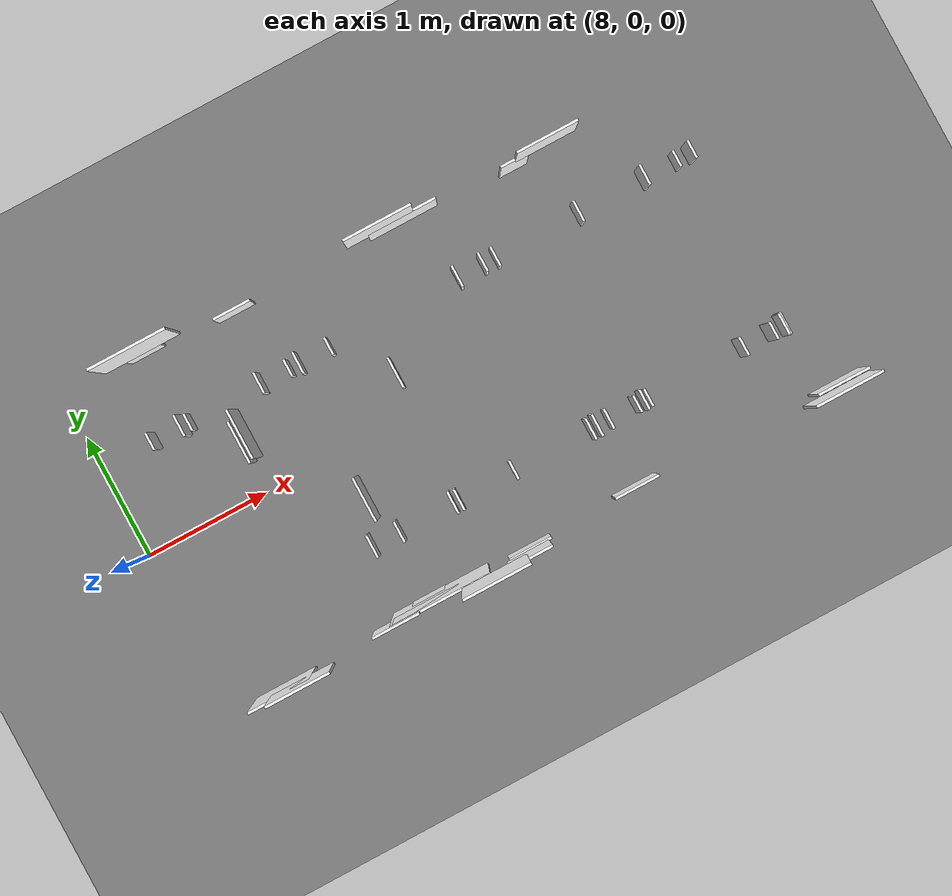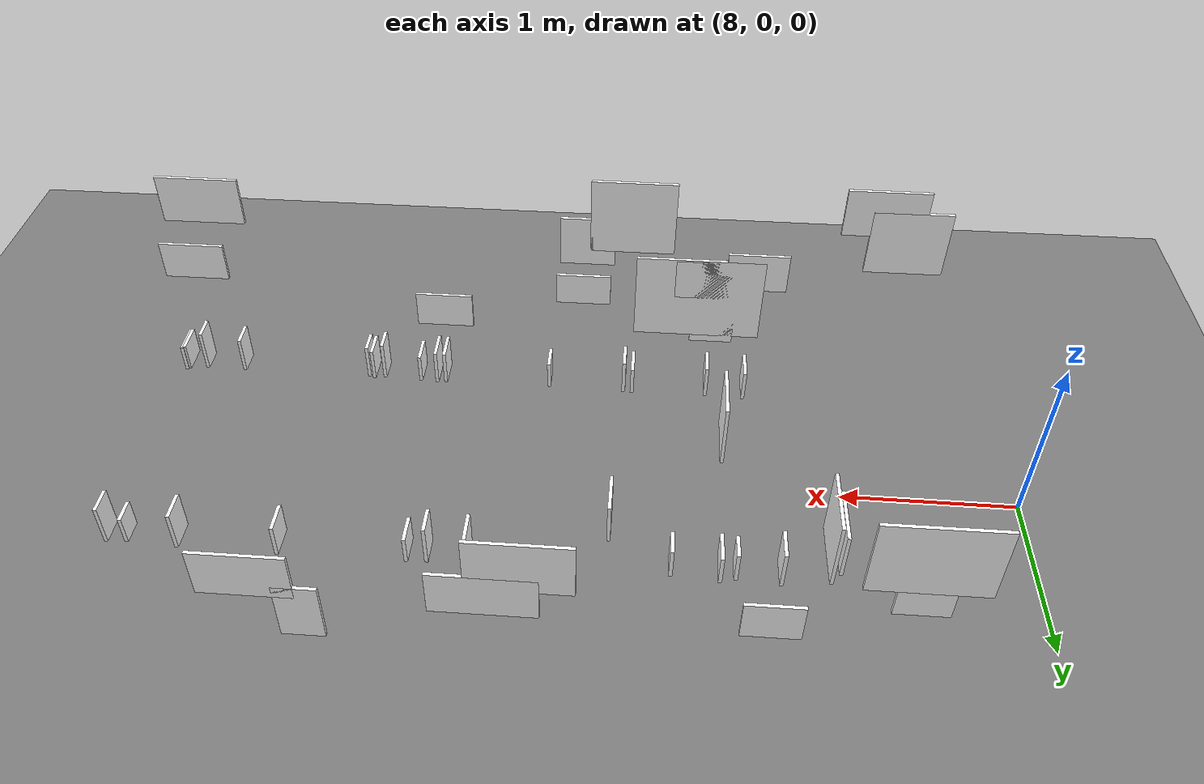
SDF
<sdf version="1.9">
 <world name="tunnel_world">
  <model name="ground_plane">
   <static>true</static>
   <link name="ground">
    <collision name="ground_collision">
     <geometry><plane><normal>0 0 1</normal><size>100 100</size></plane></geometry>
    </collision>
    <visual name="ground_visual">
     <geometry><plane><normal>0 0 1</normal><size>100 100</size></plane></geometry>
     <material>
      <diffuse>0.50 0.50 0.50 1</diffuse>
      <emissive>0.08 0.08 0.08 1</emissive>
      <ambient>0.5 0.5 0.5</ambient>
     </material>
    </visual>
   </link>
  </model>
  <model name="defect_crack_03">
   <static>true</static>
   <pose>8.618 -1.25 0.9 0 0 0</pose>
   <link name="link">
    <visual name="visual">
     <laser_retro>500</laser_retro>
     <geometry><box><size>0.466 0.02 0.42</size></box></geometry>
     <material>
      <ambient>1 1 1 1</ambient>
      <diffuse>1 1 1 1</diffuse>
      <emissive>0.05 0.05 0.05 1</emissive>
      <specular>0.05 0.05 0.05 1</specular>
      <pbr>
       <metal>
        <albedo_map>file:///home/ylf/workspace/inspection_robot/data_gen/textures_data1/crack_18.png</albedo_map>
        <metalness>0.0</metalness>
        <roughness>0.9</roughness>
       </metal>
      </pbr>
     </material>
    </visual>
    <collision name="collision"><geometry><box><size>0.466 0.02 0.42</size></box></geometry></collision>
   </link>
  </model>
  <model name="defect_crack_06">
   <static>true</static>
   <pose>12.906 -1.25 0.983 0 0 0</pose>
   <link name="link">
    <visual name="visual">
     <laser_retro>500</laser_retro>
     <geometry><box><size>0.507 0.02 0.305</size></box></geometry>
     <material>
      <ambient>1 1 1 1</ambient>
      <diffuse>1 1 1 1</diffuse>
      <emissive>0.05 0.05 0.05 1</emissive>
      <specular>0.05 0.05 0.05 1</specular>
      <pbr>
       <metal>
        <albedo_map>file:///home/ylf/workspace/inspection_robot/data_gen/textures_data1/crack_16.png</albedo_map>
        <metalness>0.0</metalness>
        <roughness>0.9</roughness>
       </metal>
      </pbr>
     </material>
    </visual>
    <collision name="collision"><geometry><box><size>0.507 0.02 0.305</size></box></geometry></collision>
   </link>
  </model>
  <model name="defect_crack_07">
   <static>true</static>
   <pose>9.477 -1.25 0.636 0 0 0</pose>
   <link name="link">
    <visual name="visual">
     <laser_retro>500</laser_retro>
     <geometry><box><size>0.372 0.02 0.258</size></box></geometry>
     <material>
      <ambient>1 1 1 1</ambient>
      <diffuse>1 1 1 1</diffuse>
      <emissive>0.05 0.05 0.05 1</emissive>
      <specular>0.05 0.05 0.05 1</specular>
      <pbr>
       <metal>
        <albedo_map>file:///home/ylf/workspace/inspection_robot/data_gen/textures_data1/crack_3.png</albedo_map>
        <metalness>0.0</metalness>
        <roughness>0.9</roughness>
       </metal>
      </pbr>
     </material>
    </visual>
    <collision name="collision"><geometry><box><size>0.372 0.02 0.258</size></box></geometry></collision>
   </link>
  </model>
  <model name="defect_crack_10">
   <static>true</static>
   <pose>10.862 1.25 0.487 0 0 0</pose>
   <link name="link">
    <visual name="visual">
     <laser_retro>500</laser_retro>
     <geometry><box><size>0.546 0.02 0.267</size></box></geometry>
     <material>
      <ambient>1 1 1 1</ambient>
      <diffuse>1 1 1 1</diffuse>
      <emissive>0.05 0.05 0.05 1</emissive>
      <specular>0.05 0.05 0.05 1</specular>
      <pbr>
       <metal>
        <albedo_map>file:///home/ylf/workspace/inspection_robot/data_gen/textures_data1/crack_14.png</albedo_map>
        <metalness>0.0</metalness>
        <roughness>0.9</roughness>
       </metal>
      </pbr>
     </material>
    </visual>
    <collision name="collision"><geometry><box><size>0.546 0.02 0.267</size></box></geometry></collision>
   </link>
  </model>
  <model name="defect_crack_14">
   <static>true</static>
   <pose>9.712 -1.25 0.565 0 0 0</pose>
   <link name="link">
    <visual name="visual">
     <laser_retro>500</laser_retro>
     <geometry><box><size>0.527 0.02 0.27</size></box></geometry>
     <material>
      <ambient>1 1 1 1</ambient>
      <diffuse>1 1 1 1</diffuse>
      <emissive>0.05 0.05 0.05 1</emissive>
      <specular>0.05 0.05 0.05 1</specular>
      <pbr>
       <metal>
        <albedo_map>file:///home/ylf/workspace/inspection_robot/data_gen/textures_data1/crack_4.png</albedo_map>
        <metalness>0.0</metalness>
        <roughness>0.9</roughness>
       </metal>
      </pbr>
     </material>
    </visual>
    <collision name="collision"><geometry><box><size>0.527 0.02 0.27</size></box></geometry></collision>
   </link>
  </model>
  <model name="defect_crack_19">
   <static>true</static>
   <pose>10.682 1.25 0.702 0 0 0</pose>
   <link name="link">
    <visual name="visual">
     <laser_retro>500</laser_retro>
     <geometry><box><size>0.532 0.02 0.327</size></box></geometry>
     <material>
      <ambient>1 1 1 1</ambient>
      <diffuse>1 1 1 1</diffuse>
      <emissive>0.05 0.05 0.05 1</emissive>
      <specular>0.05 0.05 0.05 1</specular>
      <pbr>
       <metal>
        <albedo_map>file:///home/ylf/workspace/inspection_robot/data_gen/textures_data1/crack_11.png</albedo_map>
        <metalness>0.0</metalness>
        <roughness>0.9</roughness>
       </metal>
      </pbr>
     </material>
    </visual>
    <collision name="collision"><geometry><box><size>0.532 0.02 0.327</size></box></geometry></collision>
   </link>
  </model>
  <model name="defect_crack_23">
   <static>true</static>
   <pose>10.524 -1.25 0.813 0 0 0</pose>
   <link name="link">
    <visual name="visual">
     <laser_retro>500</laser_retro>
     <geometry><box><size>0.334 0.02 0.322</size></box></geometry>
     <material>
      <ambient>1 1 1 1</ambient>
      <diffuse>1 1 1 1</diffuse>
      <emissive>0.05 0.05 0.05 1</emissive>
      <specular>0.05 0.05 0.05 1</specular>
      <pbr>
       <metal>
        <albedo_map>file:///home/ylf/workspace/inspection_robot/data_gen/textures_data1/crack_2.png</albedo_map>
        <metalness>0.0</metalness>
        <roughness>0.9</roughness>
       </metal>
      </pbr>
     </material>
    </visual>
    <collision name="collision"><geometry><box><size>0.334 0.02 0.322</size></box></geometry></collision>
   </link>
  </model>
  <model name="defect_equip_bracket_loose_03">
   <static>true</static>
   <pose>9.726 -1.25 0.21 0 0 0</pose>
   <link name="link">
    <visual name="visual">
     <laser_retro>760</laser_retro>
     <geometry><box><size>0.27 0.02 0.242</size></box></geometry>
     <material>
      <ambient>1 1 1 1</ambient>
      <diffuse>1 1 1 1</diffuse>
      <emissive>0.05 0.05 0.05 1</emissive>
      <specular>0.05 0.05 0.05 1</specular>
      <pbr>
       <metal>
        <albedo_map>file:///home/ylf/workspace/inspection_robot/data_gen/textures_data1/equip_bracket_loose_2.png</albedo_map>
        <metalness>0.0</metalness>
        <roughness>0.9</roughness>
       </metal>
      </pbr>
     </material>
    </visual>
    <collision name="collision"><geometry><box><size>0.27 0.02 0.242</size></box></geometry></collision>
   </link>
  </model>
  <model name="defect_equip_bracket_loose_10">
   <static>true</static>
   <pose>8.826 1.25 0.747 0 0 0</pose>
   <link name="link">
    <visual name="visual">
     <laser_retro>760</laser_retro>
     <geometry><box><size>0.27 0.02 0.377</size></box></geometry>
     <material>
      <ambient>1 1 1 1</ambient>
      <diffuse>1 1 1 1</diffuse>
      <emissive>0.05 0.05 0.05 1</emissive>
      <specular>0.05 0.05 0.05 1</specular>
      <pbr>
       <metal>
        <albedo_map>file:///home/ylf/workspace/inspection_robot/data_gen/textures_data1/equip_bracket_loose_11.png</albedo_map>
        <metalness>0.0</metalness>
        <roughness>0.9</roughness>
       </metal>
      </pbr>
     </material>
    </visual>
    <collision name="collision"><geometry><box><size>0.27 0.02 0.377</size></box></geometry></collision>
   </link>
  </model>
  <model name="defect_equip_bracket_loose_14">
   <static>true</static>
   <pose>10.548 -1.25 0.45 0 0 0</pose>
   <link name="link">
    <visual name="visual">
     <laser_retro>760</laser_retro>
     <geometry><box><size>0.339 0.02 0.209</size></box></geometry>
     <material>
      <ambient>1 1 1 1</ambient>
      <diffuse>1 1 1 1</diffuse>
      <emissive>0.05 0.05 0.05 1</emissive>
      <specular>0.05 0.05 0.05 1</specular>
      <pbr>
       <metal>
        <albedo_map>file:///home/ylf/workspace/inspection_robot/data_gen/textures_data1/equip_bracket_loose_24.png</albedo_map>
        <metalness>0.0</metalness>
        <roughness>0.9</roughness>
       </metal>
      </pbr>
     </material>
    </visual>
    <collision name="collision"><geometry><box><size>0.339 0.02 0.209</size></box></geometry></collision>
   </link>
  </model>
  <model name="defect_equip_bracket_loose_16">
   <static>true</static>
   <pose>11.775 1.25 0.274 0 0 0</pose>
   <link name="link">
    <visual name="visual">
     <laser_retro>760</laser_retro>
     <geometry><box><size>0.229 0.02 0.358</size></box></geometry>
     <material>
      <ambient>1 1 1 1</ambient>
      <diffuse>1 1 1 1</diffuse>
      <emissive>0.05 0.05 0.05 1</emissive>
      <specular>0.05 0.05 0.05 1</specular>
      <pbr>
       <metal>
        <albedo_map>file:///home/ylf/workspace/inspection_robot/data_gen/textures_data1/equip_bracket_loose_20.png</albedo_map>
        <metalness>0.0</metalness>
        <roughness>0.9</roughness>
       </metal>
      </pbr>
     </material>
    </visual>
    <collision name="collision"><geometry><box><size>0.229 0.02 0.358</size></box></geometry></collision>
   </link>
  </model>
  <model name="defect_equip_bracket_loose_20">
   <static>true</static>
   <pose>11.444 -1.25 0.233 0 0 0</pose>
   <link name="link">
    <visual name="visual">
     <laser_retro>760</laser_retro>
     <geometry><box><size>0.362 0.02 0.236</size></box></geometry>
     <material>
      <ambient>1 1 1 1</ambient>
      <diffuse>1 1 1 1</diffuse>
      <emissive>0.05 0.05 0.05 1</emissive>
      <specular>0.05 0.05 0.05 1</specular>
      <pbr>
       <metal>
        <albedo_map>file:///home/ylf/workspace/inspection_robot/data_gen/textures_data1/equip_bracket_loose_21.png</albedo_map>
        <metalness>0.0</metalness>
        <roughness>0.9</roughness>
       </metal>
      </pbr>
     </material>
    </visual>
    <collision name="collision"><geometry><box><size>0.362 0.02 0.236</size></box></geometry></collision>
   </link>
  </model>
  <model name="defect_equip_bracket_loose_22">
   <static>true</static>
   <pose>9.486 1.25 0.434 0 0 0</pose>
   <link name="link">
    <visual name="visual">
     <laser_retro>760</laser_retro>
     <geometry><box><size>0.296 0.02 0.227</size></box></geometry>
     <material>
      <ambient>1 1 1 1</ambient>
      <diffuse>1 1 1 1</diffuse>
      <emissive>0.05 0.05 0.05 1</emissive>
      <specular>0.05 0.05 0.05 1</specular>
      <pbr>
       <metal>
        <albedo_map>file:///home/ylf/workspace/inspection_robot/data_gen/textures_data1/equip_bracket_loose_13.png</albedo_map>
        <metalness>0.0</metalness>
        <roughness>0.9</roughness>
       </metal>
      </pbr>
     </material>
    </visual>
    <collision name="collision"><geometry><box><size>0.296 0.02 0.227</size></box></geometry></collision>
   </link>
  </model>
  <model name="defect_equip_intrusion_01">
   <static>true</static>
   <pose>10.292 0.32 0.138 0 0 0</pose>
   <link name="link">
    <visual name="visual">
     <laser_retro>900</laser_retro>
     <geometry><box><size>0.02 0.251 0.256</size></box></geometry>
     <material>
      <ambient>1 1 1 1</ambient>
      <diffuse>1 1 1 1</diffuse>
      <emissive>0.05 0.05 0.05 1</emissive>
      <specular>0.05 0.05 0.05 1</specular>
      <pbr>
       <metal>
        <albedo_map>file:///home/ylf/workspace/inspection_robot/data_gen/textures_data1/equip_intrusion_9.png</albedo_map>
        <metalness>0.0</metalness>
        <roughness>0.9</roughness>
       </metal>
      </pbr>
     </material>
    </visual>
   </link>
  </model>
  <model name="defect_equip_intrusion_02">
   <static>true</static>
   <pose>9.042 0.412 0.154 0 0 0</pose>
   <link name="link">
    <visual name="visual">
     <laser_retro>900</laser_retro>
     <geometry><box><size>0.02 0.346 0.288</size></box></geometry>
     <material>
      <ambient>1 1 1 1</ambient>
      <diffuse>1 1 1 1</diffuse>
      <emissive>0.05 0.05 0.05 1</emissive>
      <specular>0.05 0.05 0.05 1</specular>
      <pbr>
       <metal>
        <albedo_map>file:///home/ylf/workspace/inspection_robot/data_gen/textures_data1/equip_intrusion_5.png</albedo_map>
        <metalness>0.0</metalness>
        <roughness>0.9</roughness>
       </metal>
      </pbr>
     </material>
    </visual>
   </link>
  </model>
  <model name="defect_equip_intrusion_06">
   <static>true</static>
   <pose>9.662 -0.389 0.213 0 0 0</pose>
   <link name="link">
    <visual name="visual">
     <laser_retro>900</laser_retro>
     <geometry><box><size>0.02 0.357 0.406</size></box></geometry>
     <material>
      <ambient>1 1 1 1</ambient>
      <diffuse>1 1 1 1</diffuse>
      <emissive>0.05 0.05 0.05 1</emissive>
      <specular>0.05 0.05 0.05 1</specular>
      <pbr>
       <metal>
        <albedo_map>file:///home/ylf/workspace/inspection_robot/data_gen/textures_data1/equip_intrusion_6.png</albedo_map>
        <metalness>0.0</metalness>
        <roughness>0.9</roughness>
       </metal>
      </pbr>
     </material>
    </visual>
   </link>
  </model>
  <model name="defect_equip_intrusion_09">
   <static>true</static>
   <pose>9.099 0.453 0.227 0 0 0</pose>
   <link name="link">
    <visual name="visual">
     <laser_retro>900</laser_retro>
     <geometry><box><size>0.02 0.401 0.433</size></box></geometry>
     <material>
      <ambient>1 1 1 1</ambient>
      <diffuse>1 1 1 1</diffuse>
      <emissive>0.05 0.05 0.05 1</emissive>
      <specular>0.05 0.05 0.05 1</specular>
      <pbr>
       <metal>
        <albedo_map>file:///home/ylf/workspace/inspection_robot/data_gen/textures_data1/equip_intrusion_4.png</albedo_map>
        <metalness>0.0</metalness>
        <roughness>0.9</roughness>
       </metal>
      </pbr>
     </material>
    </visual>
   </link>
  </model>
  <model name="defect_leakage_06">
   <static>true</static>
   <pose>10.253 -1.25 0.995 0 0 0</pose>
   <link name="link">
    <visual name="visual">
     <laser_retro>300</laser_retro>
     <geometry><box><size>0.511 0.02 0.483</size></box></geometry>
     <material>
      <ambient>1 1 1 1</ambient>
      <diffuse>1 1 1 1</diffuse>
      <emissive>0.05 0.05 0.05 1</emissive>
      <specular>0.05 0.05 0.05 1</specular>
      <pbr>
       <metal>
        <albedo_map>file:///home/ylf/workspace/inspection_robot/data_gen/textures_data1/leakage_15.png</albedo_map>
        <metalness>0.0</metalness>
        <roughness>0.9</roughness>
       </metal>
      </pbr>
     </material>
    </visual>
    <collision name="collision"><geometry><box><size>0.511 0.02 0.483</size></box></geometry></collision>
   </link>
  </model>
  <model name="defect_leakage_09">
   <static>true</static>
   <pose>9.824 -1.25 0.423 0 0 0</pose>
   <link name="link">
    <visual name="visual">
     <laser_retro>300</laser_retro>
     <geometry><box><size>0.793 0.02 0.573</size></box></geometry>
     <material>
      <ambient>1 1 1 1</ambient>
      <diffuse>1 1 1 1</diffuse>
      <emissive>0.05 0.05 0.05 1</emissive>
      <specular>0.05 0.05 0.05 1</specular>
      <pbr>
       <metal>
        <albedo_map>file:///home/ylf/workspace/inspection_robot/data_gen/textures_data1/leakage_6.png</albedo_map>
        <metalness>0.0</metalness>
        <roughness>0.9</roughness>
       </metal>
      </pbr>
     </material>
    </visual>
    <collision name="collision"><geometry><box><size>0.793 0.02 0.573</size></box></geometry></collision>
   </link>
  </model>
  <model name="defect_leakage_18">
   <static>true</static>
   <pose>8.825 1.25 0.93 0 0 0</pose>
   <link name="link">
    <visual name="visual">
     <laser_retro>300</laser_retro>
     <geometry><box><size>0.585 0.02 0.43</size></box></geometry>
     <material>
      <ambient>1 1 1 1</ambient>
      <diffuse>1 1 1 1</diffuse>
      <emissive>0.05 0.05 0.05 1</emissive>
      <specular>0.05 0.05 0.05 1</specular>
      <pbr>
       <metal>
        <albedo_map>file:///home/ylf/workspace/inspection_robot/data_gen/textures_data1/leakage_7.png</albedo_map>
        <metalness>0.0</metalness>
        <roughness>0.9</roughness>
       </metal>
      </pbr>
     </material>
    </visual>
    <collision name="collision"><geometry><box><size>0.585 0.02 0.43</size></box></geometry></collision>
   </link>
  </model>
  <model name="defect_leakage_24">
   <static>true</static>
   <pose>12.025 1.25 0.525 0 0 0</pose>
   <link name="link">
    <visual name="visual">
     <laser_retro>300</laser_retro>
     <geometry><box><size>0.49 0.02 0.286</size></box></geometry>
     <material>
      <ambient>1 1 1 1</ambient>
      <diffuse>1 1 1 1</diffuse>
      <emissive>0.05 0.05 0.05 1</emissive>
      <specular>0.05 0.05 0.05 1</specular>
      <pbr>
       <metal>
        <albedo_map>file:///home/ylf/workspace/inspection_robot/data_gen/textures_data1/leakage_16.png</albedo_map>
        <metalness>0.0</metalness>
        <roughness>0.9</roughness>
       </metal>
      </pbr>
     </material>
    </visual>
    <collision name="collision"><geometry><box><size>0.49 0.02 0.286</size></box></geometry></collision>
   </link>
  </model>
  <model name="defect_rail_fastener_broken_01">
   <static>true</static>
   <pose>8.498 0.717 0.276 0 0 0</pose>
   <link name="link">
    <visual name="visual">
     <laser_retro>450</laser_retro>
     <geometry><box><size>0.02 0.137 0.241</size></box></geometry>
     <material>
      <ambient>1 1 1 1</ambient>
      <diffuse>1 1 1 1</diffuse>
      <emissive>0.05 0.05 0.05 1</emissive>
      <specular>0.05 0.05 0.05 1</specular>
      <pbr>
       <metal>
        <albedo_map>file:///home/ylf/workspace/inspection_robot/data_gen/textures_data1/rail_fastener_broken_2.png</albedo_map>
        <metalness>0.0</metalness>
        <roughness>0.9</roughness>
       </metal>
      </pbr>
     </material>
    </visual>
   </link>
  </model>
  <model name="defect_rail_fastener_broken_02">
   <static>true</static>
   <pose>11.346 -0.717 0.263 0 0 0</pose>
   <link name="link">
    <visual name="visual">
     <laser_retro>450</laser_retro>
     <geometry><box><size>0.02 0.174 0.216</size></box></geometry>
     <material>
      <ambient>1 1 1 1</ambient>
      <diffuse>1 1 1 1</diffuse>
      <emissive>0.05 0.05 0.05 1</emissive>
      <specular>0.05 0.05 0.05 1</specular>
      <pbr>
       <metal>
        <albedo_map>file:///home/ylf/workspace/inspection_robot/data_gen/textures_data1/rail_fastener_broken_20.png</albedo_map>
        <metalness>0.0</metalness>
        <roughness>0.9</roughness>
       </metal>
      </pbr>
     </material>
    </visual>
   </link>
  </model>
  <model name="defect_rail_fastener_broken_04">
   <static>true</static>
   <pose>12.84 0.717 0.24 0 0 0</pose>
   <link name="link">
    <visual name="visual">
     <laser_retro>450</laser_retro>
     <geometry><box><size>0.02 0.133 0.169</size></box></geometry>
     <material>
      <ambient>1 1 1 1</ambient>
      <diffuse>1 1 1 1</diffuse>
      <emissive>0.05 0.05 0.05 1</emissive>
      <specular>0.05 0.05 0.05 1</specular>
      <pbr>
       <metal>
        <albedo_map>file:///home/ylf/workspace/inspection_robot/data_gen/textures_data1/rail_fastener_broken_25.png</albedo_map>
        <metalness>0.0</metalness>
        <roughness>0.9</roughness>
       </metal>
      </pbr>
     </material>
    </visual>
   </link>
  </model>
  <model name="defect_rail_fastener_broken_05">
   <static>true</static>
   <pose>11.229 0.717 0.276 0 0 0</pose>
   <link name="link">
    <visual name="visual">
     <laser_retro>450</laser_retro>
     <geometry><box><size>0.02 0.153 0.242</size></box></geometry>
     <material>
      <ambient>1 1 1 1</ambient>
      <diffuse>1 1 1 1</diffuse>
      <emissive>0.05 0.05 0.05 1</emissive>
      <specular>0.05 0.05 0.05 1</specular>
      <pbr>
       <metal>
        <albedo_map>file:///home/ylf/workspace/inspection_robot/data_gen/textures_data1/rail_fastener_broken_12.png</albedo_map>
        <metalness>0.0</metalness>
        <roughness>0.9</roughness>
       </metal>
      </pbr>
     </material>
    </visual>
   </link>
  </model>
  <model name="defect_rail_fastener_broken_10">
   <static>true</static>
   <pose>9.702 0.717 0.244 0 0 0</pose>
   <link name="link">
    <visual name="visual">
     <laser_retro>450</laser_retro>
     <geometry><box><size>0.02 0.182 0.178</size></box></geometry>
     <material>
      <ambient>1 1 1 1</ambient>
      <diffuse>1 1 1 1</diffuse>
      <emissive>0.05 0.05 0.05 1</emissive>
      <specular>0.05 0.05 0.05 1</specular>
      <pbr>
       <metal>
        <albedo_map>file:///home/ylf/workspace/inspection_robot/data_gen/textures_data1/rail_fastener_broken_15.png</albedo_map>
        <metalness>0.0</metalness>
        <roughness>0.9</roughness>
       </metal>
      </pbr>
     </material>
    </visual>
   </link>
  </model>
  <model name="defect_rail_fastener_broken_17">
   <static>true</static>
   <pose>10.211 -0.717 0.242 0 0 0</pose>
   <link name="link">
    <visual name="visual">
     <laser_retro>450</laser_retro>
     <geometry><box><size>0.02 0.181 0.174</size></box></geometry>
     <material>
      <ambient>1 1 1 1</ambient>
      <diffuse>1 1 1 1</diffuse>
      <emissive>0.05 0.05 0.05 1</emissive>
      <specular>0.05 0.05 0.05 1</specular>
      <pbr>
       <metal>
        <albedo_map>file:///home/ylf/workspace/inspection_robot/data_gen/textures_data1/rail_fastener_broken_22.png</albedo_map>
        <metalness>0.0</metalness>
        <roughness>0.9</roughness>
       </metal>
      </pbr>
     </material>
    </visual>
   </link>
  </model>
  <model name="defect_rail_fastener_broken_19">
   <static>true</static>
   <pose>11.399 -0.717 0.265 0 0 0</pose>
   <link name="link">
    <visual name="visual">
     <laser_retro>450</laser_retro>
     <geometry><box><size>0.02 0.181 0.22</size></box></geometry>
     <material>
      <ambient>1 1 1 1</ambient>
      <diffuse>1 1 1 1</diffuse>
      <emissive>0.05 0.05 0.05 1</emissive>
      <specular>0.05 0.05 0.05 1</specular>
      <pbr>
       <metal>
        <albedo_map>file:///home/ylf/workspace/inspection_robot/data_gen/textures_data1/rail_fastener_broken_21.png</albedo_map>
        <metalness>0.0</metalness>
        <roughness>0.9</roughness>
       </metal>
      </pbr>
     </material>
    </visual>
   </link>
  </model>
  <model name="defect_rail_fastener_broken_22">
   <static>true</static>
   <pose>12.839 -0.717 0.285 0 0 0</pose>
   <link name="link">
    <visual name="visual">
     <laser_retro>450</laser_retro>
     <geometry><box><size>0.02 0.139 0.259</size></box></geometry>
     <material>
      <ambient>1 1 1 1</ambient>
      <diffuse>1 1 1 1</diffuse>
      <emissive>0.05 0.05 0.05 1</emissive>
      <specular>0.05 0.05 0.05 1</specular>
      <pbr>
       <metal>
        <albedo_map>file:///home/ylf/workspace/inspection_robot/data_gen/textures_data1/rail_fastener_broken_24.png</albedo_map>
        <metalness>0.0</metalness>
        <roughness>0.9</roughness>
       </metal>
      </pbr>
     </material>
    </visual>
   </link>
  </model>
  <model name="defect_rail_fastener_broken_23">
   <static>true</static>
   <pose>11.821 -0.717 0.264 0 0 0</pose>
   <link name="link">
    <visual name="visual">
     <laser_retro>450</laser_retro>
     <geometry><box><size>0.02 0.142 0.218</size></box></geometry>
     <material>
      <ambient>1 1 1 1</ambient>
      <diffuse>1 1 1 1</diffuse>
      <emissive>0.05 0.05 0.05 1</emissive>
      <specular>0.05 0.05 0.05 1</specular>
      <pbr>
       <metal>
        <albedo_map>file:///home/ylf/workspace/inspection_robot/data_gen/textures_data1/rail_fastener_broken_19.png</albedo_map>
        <metalness>0.0</metalness>
        <roughness>0.9</roughness>
       </metal>
      </pbr>
     </material>
    </visual>
   </link>
  </model>
  <model name="defect_rail_fastener_broken_24">
   <static>true</static>
   <pose>8.738 0.717 0.278 0 0 0</pose>
   <link name="link">
    <visual name="visual">
     <laser_retro>450</laser_retro>
     <geometry><box><size>0.02 0.173 0.246</size></box></geometry>
     <material>
      <ambient>1 1 1 1</ambient>
      <diffuse>1 1 1 1</diffuse>
      <emissive>0.05 0.05 0.05 1</emissive>
      <specular>0.05 0.05 0.05 1</specular>
      <pbr>
       <metal>
        <albedo_map>file:///home/ylf/workspace/inspection_robot/data_gen/textures_data1/rail_fastener_broken_3.png</albedo_map>
        <metalness>0.0</metalness>
        <roughness>0.9</roughness>
       </metal>
      </pbr>
     </material>
    </visual>
   </link>
  </model>
  <model name="defect_rail_fastener_broken_25">
   <static>true</static>
   <pose>12.964 -0.717 0.237 0 0 0</pose>
   <link name="link">
    <visual name="visual">
     <laser_retro>450</laser_retro>
     <geometry><box><size>0.02 0.183 0.165</size></box></geometry>
     <material>
      <ambient>1 1 1 1</ambient>
      <diffuse>1 1 1 1</diffuse>
      <emissive>0.05 0.05 0.05 1</emissive>
      <specular>0.05 0.05 0.05 1</specular>
      <pbr>
       <metal>
        <albedo_map>file:///home/ylf/workspace/inspection_robot/data_gen/textures_data1/rail_fastener_broken_6.png</albedo_map>
        <metalness>0.0</metalness>
        <roughness>0.9</roughness>
       </metal>
      </pbr>
     </material>
    </visual>
   </link>
  </model>
  <model name="defect_rail_fastener_loose_01">
   <static>true</static>
   <pose>12.95 0.717 0.276 0 0 0</pose>
   <link name="link">
    <visual name="visual">
     <laser_retro>380</laser_retro>
     <geometry><box><size>0.02 0.143 0.241</size></box></geometry>
     <material>
      <ambient>1 1 1 1</ambient>
      <diffuse>1 1 1 1</diffuse>
      <emissive>0.05 0.05 0.05 1</emissive>
      <specular>0.05 0.05 0.05 1</specular>
      <pbr>
       <metal>
        <albedo_map>file:///home/ylf/workspace/inspection_robot/data_gen/textures_data1/rail_fastener_loose_10.png</albedo_map>
        <metalness>0.0</metalness>
        <roughness>0.9</roughness>
       </metal>
      </pbr>
     </material>
    </visual>
   </link>
  </model>
  <model name="defect_rail_fastener_loose_05">
   <static>true</static>
   <pose>9.544 -0.717 0.251 0 0 0</pose>
   <link name="link">
    <visual name="visual">
     <laser_retro>380</laser_retro>
     <geometry><box><size>0.02 0.186 0.192</size></box></geometry>
     <material>
      <ambient>1 1 1 1</ambient>
      <diffuse>1 1 1 1</diffuse>
      <emissive>0.05 0.05 0.05 1</emissive>
      <specular>0.05 0.05 0.05 1</specular>
      <pbr>
       <metal>
        <albedo_map>file:///home/ylf/workspace/inspection_robot/data_gen/textures_data1/rail_fastener_loose_13.png</albedo_map>
        <metalness>0.0</metalness>
        <roughness>0.9</roughness>
       </metal>
      </pbr>
     </material>
    </visual>
   </link>
  </model>
  <model name="defect_rail_fastener_loose_06">
   <static>true</static>
   <pose>11.725 -0.717 0.278 0 0 0</pose>
   <link name="link">
    <visual name="visual">
     <laser_retro>380</laser_retro>
     <geometry><box><size>0.02 0.138 0.246</size></box></geometry>
     <material>
      <ambient>1 1 1 1</ambient>
      <diffuse>1 1 1 1</diffuse>
      <emissive>0.05 0.05 0.05 1</emissive>
      <specular>0.05 0.05 0.05 1</specular>
      <pbr>
       <metal>
        <albedo_map>file:///home/ylf/workspace/inspection_robot/data_gen/textures_data1/rail_fastener_loose_11.png</albedo_map>
        <metalness>0.0</metalness>
        <roughness>0.9</roughness>
       </metal>
      </pbr>
     </material>
    </visual>
   </link>
  </model>
  <model name="defect_rail_fastener_loose_07">
   <static>true</static>
   <pose>12.023 0.717 0.252 0 0 0</pose>
   <link name="link">
    <visual name="visual">
     <laser_retro>380</laser_retro>
     <geometry><box><size>0.02 0.174 0.194</size></box></geometry>
     <material>
      <ambient>1 1 1 1</ambient>
      <diffuse>1 1 1 1</diffuse>
      <emissive>0.05 0.05 0.05 1</emissive>
      <specular>0.05 0.05 0.05 1</specular>
      <pbr>
       <metal>
        <albedo_map>file:///home/ylf/workspace/inspection_robot/data_gen/textures_data1/rail_fastener_loose_18.png</albedo_map>
        <metalness>0.0</metalness>
        <roughness>0.9</roughness>
       </metal>
      </pbr>
     </material>
    </visual>
   </link>
  </model>
  <model name="defect_rail_fastener_loose_09">
   <static>true</static>
   <pose>8.79 0.717 0.237 0 0 0</pose>
   <link name="link">
    <visual name="visual">
     <laser_retro>380</laser_retro>
     <geometry><box><size>0.02 0.137 0.164</size></box></geometry>
     <material>
      <ambient>1 1 1 1</ambient>
      <diffuse>1 1 1 1</diffuse>
      <emissive>0.05 0.05 0.05 1</emissive>
      <specular>0.05 0.05 0.05 1</specular>
      <pbr>
       <metal>
        <albedo_map>file:///home/ylf/workspace/inspection_robot/data_gen/textures_data1/rail_fastener_loose_16.png</albedo_map>
        <metalness>0.0</metalness>
        <roughness>0.9</roughness>
       </metal>
      </pbr>
     </material>
    </visual>
   </link>
  </model>
  <model name="defect_rail_fastener_loose_11">
   <static>true</static>
   <pose>11.79 -0.717 0.256 0 0 0</pose>
   <link name="link">
    <visual name="visual">
     <laser_retro>380</laser_retro>
     <geometry><box><size>0.02 0.162 0.202</size></box></geometry>
     <material>
      <ambient>1 1 1 1</ambient>
      <diffuse>1 1 1 1</diffuse>
      <emissive>0.05 0.05 0.05 1</emissive>
      <specular>0.05 0.05 0.05 1</specular>
      <pbr>
       <metal>
        <albedo_map>file:///home/ylf/workspace/inspection_robot/data_gen/textures_data1/rail_fastener_loose_23.png</albedo_map>
        <metalness>0.0</metalness>
        <roughness>0.9</roughness>
       </metal>
      </pbr>
     </material>
    </visual>
   </link>
  </model>
  <model name="defect_rail_fastener_loose_23">
   <static>true</static>
   <pose>10.714 -0.717 0.241 0 0 0</pose>
   <link name="link">
    <visual name="visual">
     <laser_retro>380</laser_retro>
     <geometry><box><size>0.02 0.151 0.172</size></box></geometry>
     <material>
      <ambient>1 1 1 1</ambient>
      <diffuse>1 1 1 1</diffuse>
      <emissive>0.05 0.05 0.05 1</emissive>
      <specular>0.05 0.05 0.05 1</specular>
      <pbr>
       <metal>
        <albedo_map>file:///home/ylf/workspace/inspection_robot/data_gen/textures_data1/rail_fastener_loose_7.png</albedo_map>
        <metalness>0.0</metalness>
        <roughness>0.9</roughness>
       </metal>
      </pbr>
     </material>
    </visual>
   </link>
  </model>
  <model name="defect_rail_fastener_missing_04">
   <static>true</static>
   <pose>11.02 0.717 0.259 0 0 0</pose>
   <link name="link">
    <visual name="visual">
     <laser_retro>520</laser_retro>
     <geometry><box><size>0.02 0.175 0.209</size></box></geometry>
     <material>
      <ambient>1 1 1 1</ambient>
      <diffuse>1 1 1 1</diffuse>
      <emissive>0.05 0.05 0.05 1</emissive>
      <specular>0.05 0.05 0.05 1</specular>
      <pbr>
       <metal>
        <albedo_map>file:///home/ylf/workspace/inspection_robot/data_gen/textures_data1/rail_fastener_missing_22.png</albedo_map>
        <metalness>0.0</metalness>
        <roughness>0.9</roughness>
       </metal>
      </pbr>
     </material>
    </visual>
   </link>
  </model>
  <model name="defect_rail_fastener_missing_05">
   <static>true</static>
   <pose>9.621 0.717 0.249 0 0 0</pose>
   <link name="link">
    <visual name="visual">
     <laser_retro>520</laser_retro>
     <geometry><box><size>0.02 0.137 0.187</size></box></geometry>
     <material>
      <ambient>1 1 1 1</ambient>
      <diffuse>1 1 1 1</diffuse>
      <emissive>0.05 0.05 0.05 1</emissive>
      <specular>0.05 0.05 0.05 1</specular>
      <pbr>
       <metal>
        <albedo_map>file:///home/ylf/workspace/inspection_robot/data_gen/textures_data1/rail_fastener_missing_3.png</albedo_map>
        <metalness>0.0</metalness>
        <roughness>0.9</roughness>
       </metal>
      </pbr>
     </material>
    </visual>
   </link>
  </model>
  <model name="defect_rail_fastener_missing_07">
   <static>true</static>
   <pose>9.388 0.717 0.269 0 0 0</pose>
   <link name="link">
    <visual name="visual">
     <laser_retro>520</laser_retro>
     <geometry><box><size>0.02 0.172 0.228</size></box></geometry>
     <material>
      <ambient>1 1 1 1</ambient>
      <diffuse>1 1 1 1</diffuse>
      <emissive>0.05 0.05 0.05 1</emissive>
      <specular>0.05 0.05 0.05 1</specular>
      <pbr>
       <metal>
        <albedo_map>file:///home/ylf/workspace/inspection_robot/data_gen/textures_data1/rail_fastener_missing_9.png</albedo_map>
        <metalness>0.0</metalness>
        <roughness>0.9</roughness>
       </metal>
      </pbr>
     </material>
    </visual>
   </link>
  </model>
  <model name="defect_rail_fastener_missing_08">
   <static>true</static>
   <pose>12.603 -0.717 0.269 0 0 0</pose>
   <link name="link">
    <visual name="visual">
     <laser_retro>520</laser_retro>
     <geometry><box><size>0.02 0.148 0.228</size></box></geometry>
     <material>
      <ambient>1 1 1 1</ambient>
      <diffuse>1 1 1 1</diffuse>
      <emissive>0.05 0.05 0.05 1</emissive>
      <specular>0.05 0.05 0.05 1</specular>
      <pbr>
       <metal>
        <albedo_map>file:///home/ylf/workspace/inspection_robot/data_gen/textures_data1/rail_fastener_missing_24.png</albedo_map>
        <metalness>0.0</metalness>
        <roughness>0.9</roughness>
       </metal>
      </pbr>
     </material>
    </visual>
   </link>
  </model>
  <model name="defect_rail_fastener_missing_10">
   <static>true</static>
   <pose>11.336 0.717 0.238 0 0 0</pose>
   <link name="link">
    <visual name="visual">
     <laser_retro>520</laser_retro>
     <geometry><box><size>0.02 0.161 0.166</size></box></geometry>
     <material>
      <ambient>1 1 1 1</ambient>
      <diffuse>1 1 1 1</diffuse>
      <emissive>0.05 0.05 0.05 1</emissive>
      <specular>0.05 0.05 0.05 1</specular>
      <pbr>
       <metal>
        <albedo_map>file:///home/ylf/workspace/inspection_robot/data_gen/textures_data1/rail_fastener_missing_19.png</albedo_map>
        <metalness>0.0</metalness>
        <roughness>0.9</roughness>
       </metal>
      </pbr>
     </material>
    </visual>
   </link>
  </model>
  <model name="defect_rail_fastener_missing_11">
   <static>true</static>
   <pose>11.5 -0.717 0.244 0 0 0</pose>
   <link name="link">
    <visual name="visual">
     <laser_retro>520</laser_retro>
     <geometry><box><size>0.02 0.164 0.178</size></box></geometry>
     <material>
      <ambient>1 1 1 1</ambient>
      <diffuse>1 1 1 1</diffuse>
      <emissive>0.05 0.05 0.05 1</emissive>
      <specular>0.05 0.05 0.05 1</specular>
      <pbr>
       <metal>
        <albedo_map>file:///home/ylf/workspace/inspection_robot/data_gen/textures_data1/rail_fastener_missing_23.png</albedo_map>
        <metalness>0.0</metalness>
        <roughness>0.9</roughness>
       </metal>
      </pbr>
     </material>
    </visual>
   </link>
  </model>
  <model name="defect_rail_fastener_missing_14">
   <static>true</static>
   <pose>9.769 -0.717 0.258 0 0 0</pose>
   <link name="link">
    <visual name="visual">
     <laser_retro>520</laser_retro>
     <geometry><box><size>0.02 0.169 0.206</size></box></geometry>
     <material>
      <ambient>1 1 1 1</ambient>
      <diffuse>1 1 1 1</diffuse>
      <emissive>0.05 0.05 0.05 1</emissive>
      <specular>0.05 0.05 0.05 1</specular>
      <pbr>
       <metal>
        <albedo_map>file:///home/ylf/workspace/inspection_robot/data_gen/textures_data1/rail_fastener_missing_12.png</albedo_map>
        <metalness>0.0</metalness>
        <roughness>0.9</roughness>
       </metal>
      </pbr>
     </material>
    </visual>
   </link>
  </model>
  <model name="defect_rail_fastener_missing_15">
   <static>true</static>
   <pose>12.951 -0.717 0.24 0 0 0</pose>
   <link name="link">
    <visual name="visual">
     <laser_retro>520</laser_retro>
     <geometry><box><size>0.02 0.172 0.171</size></box></geometry>
     <material>
      <ambient>1 1 1 1</ambient>
      <diffuse>1 1 1 1</diffuse>
      <emissive>0.05 0.05 0.05 1</emissive>
      <specular>0.05 0.05 0.05 1</specular>
      <pbr>
       <metal>
        <albedo_map>file:///home/ylf/workspace/inspection_robot/data_gen/textures_data1/rail_fastener_missing_11.png</albedo_map>
        <metalness>0.0</metalness>
        <roughness>0.9</roughness>
       </metal>
      </pbr>
     </material>
    </visual>
   </link>
  </model>
  <model name="defect_rail_fastener_missing_16">
   <static>true</static>
   <pose>12.563 0.717 0.272 0 0 0</pose>
   <link name="link">
    <visual name="visual">
     <laser_retro>520</laser_retro>
     <geometry><box><size>0.02 0.163 0.234</size></box></geometry>
     <material>
      <ambient>1 1 1 1</ambient>
      <diffuse>1 1 1 1</diffuse>
      <emissive>0.05 0.05 0.05 1</emissive>
      <specular>0.05 0.05 0.05 1</specular>
      <pbr>
       <metal>
        <albedo_map>file:///home/ylf/workspace/inspection_robot/data_gen/textures_data1/rail_fastener_missing_1.png</albedo_map>
        <metalness>0.0</metalness>
        <roughness>0.9</roughness>
       </metal>
      </pbr>
     </material>
    </visual>
   </link>
  </model>
  <model name="defect_rail_fastener_missing_21">
   <static>true</static>
   <pose>10.262 -0.717 0.263 0 0 0</pose>
   <link name="link">
    <visual name="visual">
     <laser_retro>520</laser_retro>
     <geometry><box><size>0.02 0.171 0.216</size></box></geometry>
     <material>
      <ambient>1 1 1 1</ambient>
      <diffuse>1 1 1 1</diffuse>
      <emissive>0.05 0.05 0.05 1</emissive>
      <specular>0.05 0.05 0.05 1</specular>
      <pbr>
       <metal>
        <albedo_map>file:///home/ylf/workspace/inspection_robot/data_gen/textures_data1/rail_fastener_missing_18.png</albedo_map>
        <metalness>0.0</metalness>
        <roughness>0.9</roughness>
       </metal>
      </pbr>
     </material>
    </visual>
   </link>
  </model>
  <model name="defect_rail_fastener_missing_25">
   <static>true</static>
   <pose>9.957 0.717 0.248 0 0 0</pose>
   <link name="link">
    <visual name="visual">
     <laser_retro>520</laser_retro>
     <geometry><box><size>0.02 0.142 0.185</size></box></geometry>
     <material>
      <ambient>1 1 1 1</ambient>
      <diffuse>1 1 1 1</diffuse>
      <emissive>0.05 0.05 0.05 1</emissive>
      <specular>0.05 0.05 0.05 1</specular>
      <pbr>
       <metal>
        <albedo_map>file:///home/ylf/workspace/inspection_robot/data_gen/textures_data1/rail_fastener_missing_16.png</albedo_map>
        <metalness>0.0</metalness>
        <roughness>0.9</roughness>
       </metal>
      </pbr>
     </material>
    </visual>
   </link>
  </model>
  <model name="defect_spalling_04">
   <static>true</static>
   <pose>13.041 -1.25 0.524 0 0 0</pose>
   <link name="link">
    <visual name="visual">
     <laser_retro>700</laser_retro>
     <geometry><box><size>0.411 0.02 0.247</size></box></geometry>
     <material>
      <ambient>1 1 1 1</ambient>
      <diffuse>1 1 1 1</diffuse>
      <emissive>0.05 0.05 0.05 1</emissive>
      <specular>0.05 0.05 0.05 1</specular>
      <pbr>
       <metal>
        <albedo_map>file:///home/ylf/workspace/inspection_robot/data_gen/textures_data1/spalling_24.png</albedo_map>
        <metalness>0.0</metalness>
        <roughness>0.9</roughness>
       </metal>
      </pbr>
     </material>
    </visual>
    <collision name="collision"><geometry><box><size>0.411 0.02 0.247</size></box></geometry></collision>
   </link>
  </model>
  <model name="defect_spalling_15">
   <static>true</static>
   <pose>8.779 -1.25 1.098 0 0 0</pose>
   <link name="link">
    <visual name="visual">
     <laser_retro>700</laser_retro>
     <geometry><box><size>0.482 0.02 0.302</size></box></geometry>
     <material>
      <ambient>1 1 1 1</ambient>
      <diffuse>1 1 1 1</diffuse>
      <emissive>0.05 0.05 0.05 1</emissive>
      <specular>0.05 0.05 0.05 1</specular>
      <pbr>
       <metal>
        <albedo_map>file:///home/ylf/workspace/inspection_robot/data_gen/textures_data1/spalling_6.png</albedo_map>
        <metalness>0.0</metalness>
        <roughness>0.9</roughness>
       </metal>
      </pbr>
     </material>
    </visual>
    <collision name="collision"><geometry><box><size>0.482 0.02 0.302</size></box></geometry></collision>
   </link>
  </model>
 </world>
</sdf>
